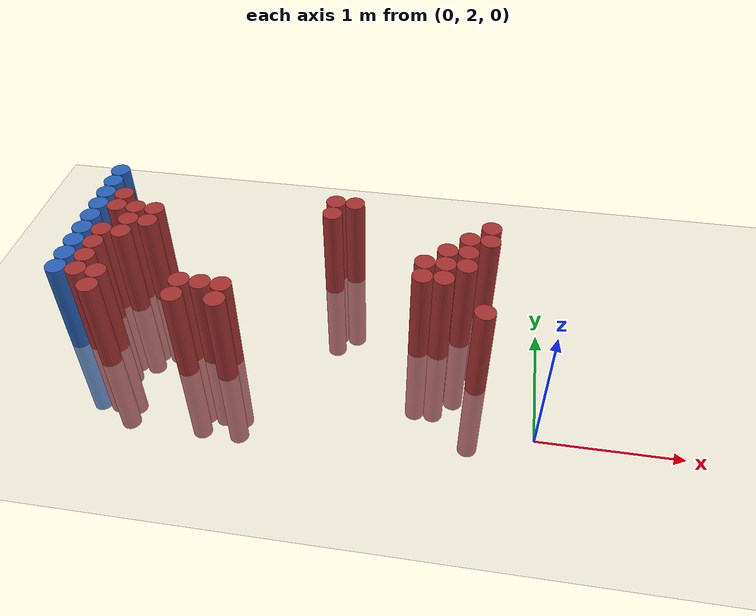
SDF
<sdf version="1.6">
 <world name="default">
  <model name="ground_plane">
   <static>1</static>
   <link name="link">
    <collision name="collision">
     <geometry><plane><normal>0 0 1</normal><size>100 100</size></plane></geometry>
     <surface><friction><ode><mu>100</mu><mu2>50</mu2></ode></friction></surface>
    </collision>
    <visual name="visual">
     <cast_shadows>0</cast_shadows>
     <geometry><plane><normal>0 0 1</normal><size>100 100</size></plane></geometry>
     <material>
      <script><uri>file://media/materials/scripts/gazebo.material</uri><name>Gazebo/Grey</name></script>
     </material>
    </visual>
   </link>
  </model>
  <model name="unit_cylinder_147">
   <static>1</static>
   <pose>-3.425000 2.425000 0.000000 0.000000 0.000000 0.000000</pose>
   <link name="link">
    <inertial>
     <mass>1</mass>
     <inertia><ixx>0.145833</ixx><ixy>0</ixy><ixz>0</ixz><iyy>0.145833</iyy><iyz>0</iyz><izz>0.125</izz></inertia>
    </inertial>
    <collision name="collision">
     <geometry><cylinder><radius>0.075000</radius><length>1.5</length></cylinder></geometry>
    </collision>
    <visual name="visual">
     <geometry><cylinder><radius>0.075000</radius><length>1.5</length></cylinder></geometry>
     <material>
      <ambient>0.152000 0.379000 0.720000 1</ambient>
      <diffuse>0.152000 0.379000 0.720000 1</diffuse>
     </material>
     <material>
      <script><name>Gazebo/Grey</name><uri>file://media/materials/scripts/gazebo.material</uri></script>
     </material>
    </visual>
   </link>
  </model>
  <model name="unit_cylinder_149">
   <static>1</static>
   <pose>-3.425000 2.575000 0.000000 0.000000 0.000000 0.000000</pose>
   <link name="link">
    <inertial>
     <mass>1</mass>
     <inertia><ixx>0.145833</ixx><ixy>0</ixy><ixz>0</ixz><iyy>0.145833</iyy><iyz>0</iyz><izz>0.125</izz></inertia>
    </inertial>
    <collision name="collision">
     <geometry><cylinder><radius>0.075000</radius><length>1.5</length></cylinder></geometry>
    </collision>
    <visual name="visual">
     <geometry><cylinder><radius>0.075000</radius><length>1.5</length></cylinder></geometry>
     <material>
      <ambient>0.152000 0.379000 0.720000 1</ambient>
      <diffuse>0.152000 0.379000 0.720000 1</diffuse>
     </material>
     <material>
      <script><name>Gazebo/Grey</name><uri>file://media/materials/scripts/gazebo.material</uri></script>
     </material>
    </visual>
   </link>
  </model>
  <model name="unit_cylinder_151">
   <static>1</static>
   <pose>-3.425000 2.725000 0.000000 0.000000 0.000000 0.000000</pose>
   <link name="link">
    <inertial>
     <mass>1</mass>
     <inertia><ixx>0.145833</ixx><ixy>0</ixy><ixz>0</ixz><iyy>0.145833</iyy><iyz>0</iyz><izz>0.125</izz></inertia>
    </inertial>
    <collision name="collision">
     <geometry><cylinder><radius>0.075000</radius><length>1.5</length></cylinder></geometry>
    </collision>
    <visual name="visual">
     <geometry><cylinder><radius>0.075000</radius><length>1.5</length></cylinder></geometry>
     <material>
      <ambient>0.152000 0.379000 0.720000 1</ambient>
      <diffuse>0.152000 0.379000 0.720000 1</diffuse>
     </material>
     <material>
      <script><name>Gazebo/Grey</name><uri>file://media/materials/scripts/gazebo.material</uri></script>
     </material>
    </visual>
   </link>
  </model>
  <model name="unit_cylinder_153">
   <static>1</static>
   <pose>-3.425000 2.875000 0.000000 0.000000 0.000000 0.000000</pose>
   <link name="link">
    <inertial>
     <mass>1</mass>
     <inertia><ixx>0.145833</ixx><ixy>0</ixy><ixz>0</ixz><iyy>0.145833</iyy><iyz>0</iyz><izz>0.125</izz></inertia>
    </inertial>
    <collision name="collision">
     <geometry><cylinder><radius>0.075000</radius><length>1.5</length></cylinder></geometry>
    </collision>
    <visual name="visual">
     <geometry><cylinder><radius>0.075000</radius><length>1.5</length></cylinder></geometry>
     <material>
      <ambient>0.152000 0.379000 0.720000 1</ambient>
      <diffuse>0.152000 0.379000 0.720000 1</diffuse>
     </material>
     <material>
      <script><name>Gazebo/Grey</name><uri>file://media/materials/scripts/gazebo.material</uri></script>
     </material>
    </visual>
   </link>
  </model>
  <model name="unit_cylinder_155">
   <static>1</static>
   <pose>-3.425000 3.025000 0.000000 0.000000 0.000000 0.000000</pose>
   <link name="link">
    <inertial>
     <mass>1</mass>
     <inertia><ixx>0.145833</ixx><ixy>0</ixy><ixz>0</ixz><iyy>0.145833</iyy><iyz>0</iyz><izz>0.125</izz></inertia>
    </inertial>
    <collision name="collision">
     <geometry><cylinder><radius>0.075000</radius><length>1.5</length></cylinder></geometry>
    </collision>
    <visual name="visual">
     <geometry><cylinder><radius>0.075000</radius><length>1.5</length></cylinder></geometry>
     <material>
      <ambient>0.152000 0.379000 0.720000 1</ambient>
      <diffuse>0.152000 0.379000 0.720000 1</diffuse>
     </material>
     <material>
      <script><name>Gazebo/Grey</name><uri>file://media/materials/scripts/gazebo.material</uri></script>
     </material>
    </visual>
   </link>
  </model>
  <model name="unit_cylinder_157">
   <static>1</static>
   <pose>-3.425000 3.175000 0.000000 0.000000 0.000000 0.000000</pose>
   <link name="link">
    <inertial>
     <mass>1</mass>
     <inertia><ixx>0.145833</ixx><ixy>0</ixy><ixz>0</ixz><iyy>0.145833</iyy><iyz>0</iyz><izz>0.125</izz></inertia>
    </inertial>
    <collision name="collision">
     <geometry><cylinder><radius>0.075000</radius><length>1.5</length></cylinder></geometry>
    </collision>
    <visual name="visual">
     <geometry><cylinder><radius>0.075000</radius><length>1.5</length></cylinder></geometry>
     <material>
      <ambient>0.152000 0.379000 0.720000 1</ambient>
      <diffuse>0.152000 0.379000 0.720000 1</diffuse>
     </material>
     <material>
      <script><name>Gazebo/Grey</name><uri>file://media/materials/scripts/gazebo.material</uri></script>
     </material>
    </visual>
   </link>
  </model>
  <model name="unit_cylinder_159">
   <static>1</static>
   <pose>-3.425000 3.325000 0.000000 0.000000 0.000000 0.000000</pose>
   <link name="link">
    <inertial>
     <mass>1</mass>
     <inertia><ixx>0.145833</ixx><ixy>0</ixy><ixz>0</ixz><iyy>0.145833</iyy><iyz>0</iyz><izz>0.125</izz></inertia>
    </inertial>
    <collision name="collision">
     <geometry><cylinder><radius>0.075000</radius><length>1.5</length></cylinder></geometry>
    </collision>
    <visual name="visual">
     <geometry><cylinder><radius>0.075000</radius><length>1.5</length></cylinder></geometry>
     <material>
      <ambient>0.152000 0.379000 0.720000 1</ambient>
      <diffuse>0.152000 0.379000 0.720000 1</diffuse>
     </material>
     <material>
      <script><name>Gazebo/Grey</name><uri>file://media/materials/scripts/gazebo.material</uri></script>
     </material>
    </visual>
   </link>
  </model>
  <model name="unit_cylinder_161">
   <static>1</static>
   <pose>-3.425000 3.475000 0.000000 0.000000 0.000000 0.000000</pose>
   <link name="link">
    <inertial>
     <mass>1</mass>
     <inertia><ixx>0.145833</ixx><ixy>0</ixy><ixz>0</ixz><iyy>0.145833</iyy><iyz>0</iyz><izz>0.125</izz></inertia>
    </inertial>
    <collision name="collision">
     <geometry><cylinder><radius>0.075000</radius><length>1.5</length></cylinder></geometry>
    </collision>
    <visual name="visual">
     <geometry><cylinder><radius>0.075000</radius><length>1.5</length></cylinder></geometry>
     <material>
      <ambient>0.152000 0.379000 0.720000 1</ambient>
      <diffuse>0.152000 0.379000 0.720000 1</diffuse>
     </material>
     <material>
      <script><name>Gazebo/Grey</name><uri>file://media/materials/scripts/gazebo.material</uri></script>
     </material>
    </visual>
   </link>
  </model>
  <model name="unit_cylinder_163">
   <static>1</static>
   <pose>-3.425000 3.625000 0.000000 0.000000 0.000000 0.000000</pose>
   <link name="link">
    <inertial>
     <mass>1</mass>
     <inertia><ixx>0.145833</ixx><ixy>0</ixy><ixz>0</ixz><iyy>0.145833</iyy><iyz>0</iyz><izz>0.125</izz></inertia>
    </inertial>
    <collision name="collision">
     <geometry><cylinder><radius>0.075000</radius><length>1.5</length></cylinder></geometry>
    </collision>
    <visual name="visual">
     <geometry><cylinder><radius>0.075000</radius><length>1.5</length></cylinder></geometry>
     <material>
      <ambient>0.152000 0.379000 0.720000 1</ambient>
      <diffuse>0.152000 0.379000 0.720000 1</diffuse>
     </material>
     <material>
      <script><name>Gazebo/Grey</name><uri>file://media/materials/scripts/gazebo.material</uri></script>
     </material>
    </visual>
   </link>
  </model>
  <model name="unit_cylinder_237">
   <static>1</static>
   <pose>-3.425000 2.425000 0.000000 0.000000 0.000000 0.000000</pose>
   <link name="link">
    <inertial>
     <mass>1</mass>
     <inertia><ixx>0.145833</ixx><ixy>0</ixy><ixz>0</ixz><iyy>0.145833</iyy><iyz>0</iyz><izz>0.125</izz></inertia>
    </inertial>
    <collision name="collision">
     <geometry><cylinder><radius>0.075000</radius><length>1.5</length></cylinder></geometry>
    </collision>
    <visual name="visual">
     <geometry><cylinder><radius>0.075000</radius><length>1.5</length></cylinder></geometry>
     <material>
      <ambient>0.152000 0.379000 0.720000 1</ambient>
      <diffuse>0.152000 0.379000 0.720000 1</diffuse>
     </material>
     <material>
      <script><name>Gazebo/Grey</name><uri>file://media/materials/scripts/gazebo.material</uri></script>
     </material>
    </visual>
   </link>
  </model>
  <model name="unit_cylinder_238">
   <static>1</static>
   <pose>-3.425000 2.575000 0.000000 0.000000 0.000000 0.000000</pose>
   <link name="link">
    <inertial>
     <mass>1</mass>
     <inertia><ixx>0.145833</ixx><ixy>0</ixy><ixz>0</ixz><iyy>0.145833</iyy><iyz>0</iyz><izz>0.125</izz></inertia>
    </inertial>
    <collision name="collision">
     <geometry><cylinder><radius>0.075000</radius><length>1.5</length></cylinder></geometry>
    </collision>
    <visual name="visual">
     <geometry><cylinder><radius>0.075000</radius><length>1.5</length></cylinder></geometry>
     <material>
      <ambient>0.152000 0.379000 0.720000 1</ambient>
      <diffuse>0.152000 0.379000 0.720000 1</diffuse>
     </material>
     <material>
      <script><name>Gazebo/Grey</name><uri>file://media/materials/scripts/gazebo.material</uri></script>
     </material>
    </visual>
   </link>
  </model>
  <model name="unit_cylinder_239">
   <static>1</static>
   <pose>-3.425000 2.725000 0.000000 0.000000 0.000000 0.000000</pose>
   <link name="link">
    <inertial>
     <mass>1</mass>
     <inertia><ixx>0.145833</ixx><ixy>0</ixy><ixz>0</ixz><iyy>0.145833</iyy><iyz>0</iyz><izz>0.125</izz></inertia>
    </inertial>
    <collision name="collision">
     <geometry><cylinder><radius>0.075000</radius><length>1.5</length></cylinder></geometry>
    </collision>
    <visual name="visual">
     <geometry><cylinder><radius>0.075000</radius><length>1.5</length></cylinder></geometry>
     <material>
      <ambient>0.152000 0.379000 0.720000 1</ambient>
      <diffuse>0.152000 0.379000 0.720000 1</diffuse>
     </material>
     <material>
      <script><name>Gazebo/Grey</name><uri>file://media/materials/scripts/gazebo.material</uri></script>
     </material>
    </visual>
   </link>
  </model>
  <model name="unit_cylinder_240">
   <static>1</static>
   <pose>-3.425000 2.875000 0.000000 0.000000 0.000000 0.000000</pose>
   <link name="link">
    <inertial>
     <mass>1</mass>
     <inertia><ixx>0.145833</ixx><ixy>0</ixy><ixz>0</ixz><iyy>0.145833</iyy><iyz>0</iyz><izz>0.125</izz></inertia>
    </inertial>
    <collision name="collision">
     <geometry><cylinder><radius>0.075000</radius><length>1.5</length></cylinder></geometry>
    </collision>
    <visual name="visual">
     <geometry><cylinder><radius>0.075000</radius><length>1.5</length></cylinder></geometry>
     <material>
      <ambient>0.152000 0.379000 0.720000 1</ambient>
      <diffuse>0.152000 0.379000 0.720000 1</diffuse>
     </material>
     <material>
      <script><name>Gazebo/Grey</name><uri>file://media/materials/scripts/gazebo.material</uri></script>
     </material>
    </visual>
   </link>
  </model>
  <model name="unit_cylinder_241">
   <static>1</static>
   <pose>-3.425000 3.025000 0.000000 0.000000 0.000000 0.000000</pose>
   <link name="link">
    <inertial>
     <mass>1</mass>
     <inertia><ixx>0.145833</ixx><ixy>0</ixy><ixz>0</ixz><iyy>0.145833</iyy><iyz>0</iyz><izz>0.125</izz></inertia>
    </inertial>
    <collision name="collision">
     <geometry><cylinder><radius>0.075000</radius><length>1.5</length></cylinder></geometry>
    </collision>
    <visual name="visual">
     <geometry><cylinder><radius>0.075000</radius><length>1.5</length></cylinder></geometry>
     <material>
      <ambient>0.152000 0.379000 0.720000 1</ambient>
      <diffuse>0.152000 0.379000 0.720000 1</diffuse>
     </material>
     <material>
      <script><name>Gazebo/Grey</name><uri>file://media/materials/scripts/gazebo.material</uri></script>
     </material>
    </visual>
   </link>
  </model>
  <model name="unit_cylinder_242">
   <static>1</static>
   <pose>-3.425000 3.175000 0.000000 0.000000 0.000000 0.000000</pose>
   <link name="link">
    <inertial>
     <mass>1</mass>
     <inertia><ixx>0.145833</ixx><ixy>0</ixy><ixz>0</ixz><iyy>0.145833</iyy><iyz>0</iyz><izz>0.125</izz></inertia>
    </inertial>
    <collision name="collision">
     <geometry><cylinder><radius>0.075000</radius><length>1.5</length></cylinder></geometry>
    </collision>
    <visual name="visual">
     <geometry><cylinder><radius>0.075000</radius><length>1.5</length></cylinder></geometry>
     <material>
      <ambient>0.152000 0.379000 0.720000 1</ambient>
      <diffuse>0.152000 0.379000 0.720000 1</diffuse>
     </material>
     <material>
      <script><name>Gazebo/Grey</name><uri>file://media/materials/scripts/gazebo.material</uri></script>
     </material>
    </visual>
   </link>
  </model>
  <model name="unit_cylinder_243">
   <static>1</static>
   <pose>-3.425000 3.325000 0.000000 0.000000 0.000000 0.000000</pose>
   <link name="link">
    <inertial>
     <mass>1</mass>
     <inertia><ixx>0.145833</ixx><ixy>0</ixy><ixz>0</ixz><iyy>0.145833</iyy><iyz>0</iyz><izz>0.125</izz></inertia>
    </inertial>
    <collision name="collision">
     <geometry><cylinder><radius>0.075000</radius><length>1.5</length></cylinder></geometry>
    </collision>
    <visual name="visual">
     <geometry><cylinder><radius>0.075000</radius><length>1.5</length></cylinder></geometry>
     <material>
      <ambient>0.152000 0.379000 0.720000 1</ambient>
      <diffuse>0.152000 0.379000 0.720000 1</diffuse>
     </material>
     <material>
      <script><name>Gazebo/Grey</name><uri>file://media/materials/scripts/gazebo.material</uri></script>
     </material>
    </visual>
   </link>
  </model>
  <model name="unit_cylinder_244">
   <static>1</static>
   <pose>-3.425000 3.475000 0.000000 0.000000 0.000000 0.000000</pose>
   <link name="link">
    <inertial>
     <mass>1</mass>
     <inertia><ixx>0.145833</ixx><ixy>0</ixy><ixz>0</ixz><iyy>0.145833</iyy><iyz>0</iyz><izz>0.125</izz></inertia>
    </inertial>
    <collision name="collision">
     <geometry><cylinder><radius>0.075000</radius><length>1.5</length></cylinder></geometry>
    </collision>
    <visual name="visual">
     <geometry><cylinder><radius>0.075000</radius><length>1.5</length></cylinder></geometry>
     <material>
      <ambient>0.152000 0.379000 0.720000 1</ambient>
      <diffuse>0.152000 0.379000 0.720000 1</diffuse>
     </material>
     <material>
      <script><name>Gazebo/Grey</name><uri>file://media/materials/scripts/gazebo.material</uri></script>
     </material>
    </visual>
   </link>
  </model>
  <model name="unit_cylinder_245">
   <static>1</static>
   <pose>-3.425000 3.625000 0.000000 0.000000 0.000000 0.000000</pose>
   <link name="link">
    <inertial>
     <mass>1</mass>
     <inertia><ixx>0.145833</ixx><ixy>0</ixy><ixz>0</ixz><iyy>0.145833</iyy><iyz>0</iyz><izz>0.125</izz></inertia>
    </inertial>
    <collision name="collision">
     <geometry><cylinder><radius>0.075000</radius><length>1.5</length></cylinder></geometry>
    </collision>
    <visual name="visual">
     <geometry><cylinder><radius>0.075000</radius><length>1.5</length></cylinder></geometry>
     <material>
      <ambient>0.152000 0.379000 0.720000 1</ambient>
      <diffuse>0.152000 0.379000 0.720000 1</diffuse>
     </material>
     <material>
      <script><name>Gazebo/Grey</name><uri>file://media/materials/scripts/gazebo.material</uri></script>
     </material>
    </visual>
   </link>
  </model>
  <model name="unit_cylinder_269">
   <static>1</static>
   <pose>-3.275000 2.425000 0.000000 0.000000 0.000000 0.000000</pose>
   <link name="link">
    <inertial>
     <mass>1</mass>
     <inertia><ixx>0.145833</ixx><ixy>0</ixy><ixz>0</ixz><iyy>0.145833</iyy><iyz>0</iyz><izz>0.125</izz></inertia>
    </inertial>
    <collision name="collision">
     <geometry><cylinder><radius>0.075000</radius><length>1.5</length></cylinder></geometry>
    </collision>
    <visual name="visual">
     <geometry><cylinder><radius>0.075000</radius><length>1.5</length></cylinder></geometry>
     <material>
      <ambient>0.648000 0.192000 0.192000 1</ambient>
      <diffuse>0.648000 0.192000 0.192000 1</diffuse>
     </material>
     <material>
      <script><name>Gazebo/Grey</name><uri>file://media/materials/scripts/gazebo.material</uri></script>
     </material>
    </visual>
   </link>
  </model>
  <model name="unit_cylinder_270">
   <static>1</static>
   <pose>-3.275000 2.575000 0.000000 0.000000 0.000000 0.000000</pose>
   <link name="link">
    <inertial>
     <mass>1</mass>
     <inertia><ixx>0.145833</ixx><ixy>0</ixy><ixz>0</ixz><iyy>0.145833</iyy><iyz>0</iyz><izz>0.125</izz></inertia>
    </inertial>
    <collision name="collision">
     <geometry><cylinder><radius>0.075000</radius><length>1.5</length></cylinder></geometry>
    </collision>
    <visual name="visual">
     <geometry><cylinder><radius>0.075000</radius><length>1.5</length></cylinder></geometry>
     <material>
      <ambient>0.648000 0.192000 0.192000 1</ambient>
      <diffuse>0.648000 0.192000 0.192000 1</diffuse>
     </material>
     <material>
      <script><name>Gazebo/Grey</name><uri>file://media/materials/scripts/gazebo.material</uri></script>
     </material>
    </visual>
   </link>
  </model>
  <model name="unit_cylinder_271">
   <static>1</static>
   <pose>-3.275000 2.725000 0.000000 0.000000 0.000000 0.000000</pose>
   <link name="link">
    <inertial>
     <mass>1</mass>
     <inertia><ixx>0.145833</ixx><ixy>0</ixy><ixz>0</ixz><iyy>0.145833</iyy><iyz>0</iyz><izz>0.125</izz></inertia>
    </inertial>
    <collision name="collision">
     <geometry><cylinder><radius>0.075000</radius><length>1.5</length></cylinder></geometry>
    </collision>
    <visual name="visual">
     <geometry><cylinder><radius>0.075000</radius><length>1.5</length></cylinder></geometry>
     <material>
      <ambient>0.648000 0.192000 0.192000 1</ambient>
      <diffuse>0.648000 0.192000 0.192000 1</diffuse>
     </material>
     <material>
      <script><name>Gazebo/Grey</name><uri>file://media/materials/scripts/gazebo.material</uri></script>
     </material>
    </visual>
   </link>
  </model>
  <model name="unit_cylinder_272">
   <static>1</static>
   <pose>-3.275000 2.875000 0.000000 0.000000 0.000000 0.000000</pose>
   <link name="link">
    <inertial>
     <mass>1</mass>
     <inertia><ixx>0.145833</ixx><ixy>0</ixy><ixz>0</ixz><iyy>0.145833</iyy><iyz>0</iyz><izz>0.125</izz></inertia>
    </inertial>
    <collision name="collision">
     <geometry><cylinder><radius>0.075000</radius><length>1.5</length></cylinder></geometry>
    </collision>
    <visual name="visual">
     <geometry><cylinder><radius>0.075000</radius><length>1.5</length></cylinder></geometry>
     <material>
      <ambient>0.648000 0.192000 0.192000 1</ambient>
      <diffuse>0.648000 0.192000 0.192000 1</diffuse>
     </material>
     <material>
      <script><name>Gazebo/Grey</name><uri>file://media/materials/scripts/gazebo.material</uri></script>
     </material>
    </visual>
   </link>
  </model>
  <model name="unit_cylinder_273">
   <static>1</static>
   <pose>-3.275000 3.175000 0.000000 0.000000 0.000000 0.000000</pose>
   <link name="link">
    <inertial>
     <mass>1</mass>
     <inertia><ixx>0.145833</ixx><ixy>0</ixy><ixz>0</ixz><iyy>0.145833</iyy><iyz>0</iyz><izz>0.125</izz></inertia>
    </inertial>
    <collision name="collision">
     <geometry><cylinder><radius>0.075000</radius><length>1.5</length></cylinder></geometry>
    </collision>
    <visual name="visual">
     <geometry><cylinder><radius>0.075000</radius><length>1.5</length></cylinder></geometry>
     <material>
      <ambient>0.648000 0.192000 0.192000 1</ambient>
      <diffuse>0.648000 0.192000 0.192000 1</diffuse>
     </material>
     <material>
      <script><name>Gazebo/Grey</name><uri>file://media/materials/scripts/gazebo.material</uri></script>
     </material>
    </visual>
   </link>
  </model>
  <model name="unit_cylinder_274">
   <static>1</static>
   <pose>-3.275000 3.325000 0.000000 0.000000 0.000000 0.000000</pose>
   <link name="link">
    <inertial>
     <mass>1</mass>
     <inertia><ixx>0.145833</ixx><ixy>0</ixy><ixz>0</ixz><iyy>0.145833</iyy><iyz>0</iyz><izz>0.125</izz></inertia>
    </inertial>
    <collision name="collision">
     <geometry><cylinder><radius>0.075000</radius><length>1.5</length></cylinder></geometry>
    </collision>
    <visual name="visual">
     <geometry><cylinder><radius>0.075000</radius><length>1.5</length></cylinder></geometry>
     <material>
      <ambient>0.648000 0.192000 0.192000 1</ambient>
      <diffuse>0.648000 0.192000 0.192000 1</diffuse>
     </material>
     <material>
      <script><name>Gazebo/Grey</name><uri>file://media/materials/scripts/gazebo.material</uri></script>
     </material>
    </visual>
   </link>
  </model>
  <model name="unit_cylinder_280">
   <static>1</static>
   <pose>-3.125000 2.275000 0.000000 0.000000 0.000000 0.000000</pose>
   <link name="link">
    <inertial>
     <mass>1</mass>
     <inertia><ixx>0.145833</ixx><ixy>0</ixy><ixz>0</ixz><iyy>0.145833</iyy><iyz>0</iyz><izz>0.125</izz></inertia>
    </inertial>
    <collision name="collision">
     <geometry><cylinder><radius>0.075000</radius><length>1.5</length></cylinder></geometry>
    </collision>
    <visual name="visual">
     <geometry><cylinder><radius>0.075000</radius><length>1.5</length></cylinder></geometry>
     <material>
      <ambient>0.648000 0.192000 0.192000 1</ambient>
      <diffuse>0.648000 0.192000 0.192000 1</diffuse>
     </material>
     <material>
      <script><name>Gazebo/Grey</name><uri>file://media/materials/scripts/gazebo.material</uri></script>
     </material>
    </visual>
   </link>
  </model>
  <model name="unit_cylinder_281">
   <static>1</static>
   <pose>-3.125000 2.425000 0.000000 0.000000 0.000000 0.000000</pose>
   <link name="link">
    <inertial>
     <mass>1</mass>
     <inertia><ixx>0.145833</ixx><ixy>0</ixy><ixz>0</ixz><iyy>0.145833</iyy><iyz>0</iyz><izz>0.125</izz></inertia>
    </inertial>
    <collision name="collision">
     <geometry><cylinder><radius>0.075000</radius><length>1.5</length></cylinder></geometry>
    </collision>
    <visual name="visual">
     <geometry><cylinder><radius>0.075000</radius><length>1.5</length></cylinder></geometry>
     <material>
      <ambient>0.648000 0.192000 0.192000 1</ambient>
      <diffuse>0.648000 0.192000 0.192000 1</diffuse>
     </material>
     <material>
      <script><name>Gazebo/Grey</name><uri>file://media/materials/scripts/gazebo.material</uri></script>
     </material>
    </visual>
   </link>
  </model>
  <model name="unit_cylinder_282">
   <static>1</static>
   <pose>-3.125000 2.875000 0.000000 0.000000 0.000000 0.000000</pose>
   <link name="link">
    <inertial>
     <mass>1</mass>
     <inertia><ixx>0.145833</ixx><ixy>0</ixy><ixz>0</ixz><iyy>0.145833</iyy><iyz>0</iyz><izz>0.125</izz></inertia>
    </inertial>
    <collision name="collision">
     <geometry><cylinder><radius>0.075000</radius><length>1.5</length></cylinder></geometry>
    </collision>
    <visual name="visual">
     <geometry><cylinder><radius>0.075000</radius><length>1.5</length></cylinder></geometry>
     <material>
      <ambient>0.648000 0.192000 0.192000 1</ambient>
      <diffuse>0.648000 0.192000 0.192000 1</diffuse>
     </material>
     <material>
      <script><name>Gazebo/Grey</name><uri>file://media/materials/scripts/gazebo.material</uri></script>
     </material>
    </visual>
   </link>
  </model>
  <model name="unit_cylinder_283">
   <static>1</static>
   <pose>-3.125000 3.025000 0.000000 0.000000 0.000000 0.000000</pose>
   <link name="link">
    <inertial>
     <mass>1</mass>
     <inertia><ixx>0.145833</ixx><ixy>0</ixy><ixz>0</ixz><iyy>0.145833</iyy><iyz>0</iyz><izz>0.125</izz></inertia>
    </inertial>
    <collision name="collision">
     <geometry><cylinder><radius>0.075000</radius><length>1.5</length></cylinder></geometry>
    </collision>
    <visual name="visual">
     <geometry><cylinder><radius>0.075000</radius><length>1.5</length></cylinder></geometry>
     <material>
      <ambient>0.648000 0.192000 0.192000 1</ambient>
      <diffuse>0.648000 0.192000 0.192000 1</diffuse>
     </material>
     <material>
      <script><name>Gazebo/Grey</name><uri>file://media/materials/scripts/gazebo.material</uri></script>
     </material>
    </visual>
   </link>
  </model>
  <model name="unit_cylinder_284">
   <static>1</static>
   <pose>-3.125000 3.175000 0.000000 0.000000 0.000000 0.000000</pose>
   <link name="link">
    <inertial>
     <mass>1</mass>
     <inertia><ixx>0.145833</ixx><ixy>0</ixy><ixz>0</ixz><iyy>0.145833</iyy><iyz>0</iyz><izz>0.125</izz></inertia>
    </inertial>
    <collision name="collision">
     <geometry><cylinder><radius>0.075000</radius><length>1.5</length></cylinder></geometry>
    </collision>
    <visual name="visual">
     <geometry><cylinder><radius>0.075000</radius><length>1.5</length></cylinder></geometry>
     <material>
      <ambient>0.648000 0.192000 0.192000 1</ambient>
      <diffuse>0.648000 0.192000 0.192000 1</diffuse>
     </material>
     <material>
      <script><name>Gazebo/Grey</name><uri>file://media/materials/scripts/gazebo.material</uri></script>
     </material>
    </visual>
   </link>
  </model>
  <model name="unit_cylinder_291">
   <static>1</static>
   <pose>-2.975000 3.025000 0.000000 0.000000 0.000000 0.000000</pose>
   <link name="link">
    <inertial>
     <mass>1</mass>
     <inertia><ixx>0.145833</ixx><ixy>0</ixy><ixz>0</ixz><iyy>0.145833</iyy><iyz>0</iyz><izz>0.125</izz></inertia>
    </inertial>
    <collision name="collision">
     <geometry><cylinder><radius>0.075000</radius><length>1.5</length></cylinder></geometry>
    </collision>
    <visual name="visual">
     <geometry><cylinder><radius>0.075000</radius><length>1.5</length></cylinder></geometry>
     <material>
      <ambient>0.648000 0.192000 0.192000 1</ambient>
      <diffuse>0.648000 0.192000 0.192000 1</diffuse>
     </material>
     <material>
      <script><name>Gazebo/Grey</name><uri>file://media/materials/scripts/gazebo.material</uri></script>
     </material>
    </visual>
   </link>
  </model>
  <model name="unit_cylinder_292">
   <static>1</static>
   <pose>-2.975000 3.175000 0.000000 0.000000 0.000000 0.000000</pose>
   <link name="link">
    <inertial>
     <mass>1</mass>
     <inertia><ixx>0.145833</ixx><ixy>0</ixy><ixz>0</ixz><iyy>0.145833</iyy><iyz>0</iyz><izz>0.125</izz></inertia>
    </inertial>
    <collision name="collision">
     <geometry><cylinder><radius>0.075000</radius><length>1.5</length></cylinder></geometry>
    </collision>
    <visual name="visual">
     <geometry><cylinder><radius>0.075000</radius><length>1.5</length></cylinder></geometry>
     <material>
      <ambient>0.648000 0.192000 0.192000 1</ambient>
      <diffuse>0.648000 0.192000 0.192000 1</diffuse>
     </material>
     <material>
      <script><name>Gazebo/Grey</name><uri>file://media/materials/scripts/gazebo.material</uri></script>
     </material>
    </visual>
   </link>
  </model>
  <model name="unit_cylinder_316">
   <static>1</static>
   <pose>-2.525000 2.275000 0.000000 0.000000 0.000000 0.000000</pose>
   <link name="link">
    <inertial>
     <mass>1</mass>
     <inertia><ixx>0.145833</ixx><ixy>0</ixy><ixz>0</ixz><iyy>0.145833</iyy><iyz>0</iyz><izz>0.125</izz></inertia>
    </inertial>
    <collision name="collision">
     <geometry><cylinder><radius>0.075000</radius><length>1.5</length></cylinder></geometry>
    </collision>
    <visual name="visual">
     <geometry><cylinder><radius>0.075000</radius><length>1.5</length></cylinder></geometry>
     <material>
      <ambient>0.648000 0.192000 0.192000 1</ambient>
      <diffuse>0.648000 0.192000 0.192000 1</diffuse>
     </material>
     <material>
      <script><name>Gazebo/Grey</name><uri>file://media/materials/scripts/gazebo.material</uri></script>
     </material>
    </visual>
   </link>
  </model>
  <model name="unit_cylinder_317">
   <static>1</static>
   <pose>-2.525000 2.425000 0.000000 0.000000 0.000000 0.000000</pose>
   <link name="link">
    <inertial>
     <mass>1</mass>
     <inertia><ixx>0.145833</ixx><ixy>0</ixy><ixz>0</ixz><iyy>0.145833</iyy><iyz>0</iyz><izz>0.125</izz></inertia>
    </inertial>
    <collision name="collision">
     <geometry><cylinder><radius>0.075000</radius><length>1.5</length></cylinder></geometry>
    </collision>
    <visual name="visual">
     <geometry><cylinder><radius>0.075000</radius><length>1.5</length></cylinder></geometry>
     <material>
      <ambient>0.648000 0.192000 0.192000 1</ambient>
      <diffuse>0.648000 0.192000 0.192000 1</diffuse>
     </material>
     <material>
      <script><name>Gazebo/Grey</name><uri>file://media/materials/scripts/gazebo.material</uri></script>
     </material>
    </visual>
   </link>
  </model>
  <model name="unit_cylinder_327">
   <static>1</static>
   <pose>-2.375000 2.425000 0.000000 0.000000 0.000000 0.000000</pose>
   <link name="link">
    <inertial>
     <mass>1</mass>
     <inertia><ixx>0.145833</ixx><ixy>0</ixy><ixz>0</ixz><iyy>0.145833</iyy><iyz>0</iyz><izz>0.125</izz></inertia>
    </inertial>
    <collision name="collision">
     <geometry><cylinder><radius>0.075000</radius><length>1.5</length></cylinder></geometry>
    </collision>
    <visual name="visual">
     <geometry><cylinder><radius>0.075000</radius><length>1.5</length></cylinder></geometry>
     <material>
      <ambient>0.648000 0.192000 0.192000 1</ambient>
      <diffuse>0.648000 0.192000 0.192000 1</diffuse>
     </material>
     <material>
      <script><name>Gazebo/Grey</name><uri>file://media/materials/scripts/gazebo.material</uri></script>
     </material>
    </visual>
   </link>
  </model>
  <model name="unit_cylinder_338">
   <static>1</static>
   <pose>-2.225000 2.275000 0.000000 0.000000 0.000000 0.000000</pose>
   <link name="link">
    <inertial>
     <mass>1</mass>
     <inertia><ixx>0.145833</ixx><ixy>0</ixy><ixz>0</ixz><iyy>0.145833</iyy><iyz>0</iyz><izz>0.125</izz></inertia>
    </inertial>
    <collision name="collision">
     <geometry><cylinder><radius>0.075000</radius><length>1.5</length></cylinder></geometry>
    </collision>
    <visual name="visual">
     <geometry><cylinder><radius>0.075000</radius><length>1.5</length></cylinder></geometry>
     <material>
      <ambient>0.648000 0.192000 0.192000 1</ambient>
      <diffuse>0.648000 0.192000 0.192000 1</diffuse>
     </material>
     <material>
      <script><name>Gazebo/Grey</name><uri>file://media/materials/scripts/gazebo.material</uri></script>
     </material>
    </visual>
   </link>
  </model>
  <model name="unit_cylinder_339">
   <static>1</static>
   <pose>-2.225000 2.425000 0.000000 0.000000 0.000000 0.000000</pose>
   <link name="link">
    <inertial>
     <mass>1</mass>
     <inertia><ixx>0.145833</ixx><ixy>0</ixy><ixz>0</ixz><iyy>0.145833</iyy><iyz>0</iyz><izz>0.125</izz></inertia>
    </inertial>
    <collision name="collision">
     <geometry><cylinder><radius>0.075000</radius><length>1.5</length></cylinder></geometry>
    </collision>
    <visual name="visual">
     <geometry><cylinder><radius>0.075000</radius><length>1.5</length></cylinder></geometry>
     <material>
      <ambient>0.648000 0.192000 0.192000 1</ambient>
      <diffuse>0.648000 0.192000 0.192000 1</diffuse>
     </material>
     <material>
      <script><name>Gazebo/Grey</name><uri>file://media/materials/scripts/gazebo.material</uri></script>
     </material>
    </visual>
   </link>
  </model>
  <model name="unit_cylinder_355">
   <static>1</static>
   <pose>-1.625000 3.325000 0.000000 0.000000 0.000000 0.000000</pose>
   <link name="link">
    <inertial>
     <mass>1</mass>
     <inertia><ixx>0.145833</ixx><ixy>0</ixy><ixz>0</ixz><iyy>0.145833</iyy><iyz>0</iyz><izz>0.125</izz></inertia>
    </inertial>
    <collision name="collision">
     <geometry><cylinder><radius>0.075000</radius><length>1.5</length></cylinder></geometry>
    </collision>
    <visual name="visual">
     <geometry><cylinder><radius>0.075000</radius><length>1.5</length></cylinder></geometry>
     <material>
      <ambient>0.648000 0.192000 0.192000 1</ambient>
      <diffuse>0.648000 0.192000 0.192000 1</diffuse>
     </material>
     <material>
      <script><name>Gazebo/Grey</name><uri>file://media/materials/scripts/gazebo.material</uri></script>
     </material>
    </visual>
   </link>
  </model>
  <model name="unit_cylinder_356">
   <static>1</static>
   <pose>-1.625000 3.475000 0.000000 0.000000 0.000000 0.000000</pose>
   <link name="link">
    <inertial>
     <mass>1</mass>
     <inertia><ixx>0.145833</ixx><ixy>0</ixy><ixz>0</ixz><iyy>0.145833</iyy><iyz>0</iyz><izz>0.125</izz></inertia>
    </inertial>
    <collision name="collision">
     <geometry><cylinder><radius>0.075000</radius><length>1.5</length></cylinder></geometry>
    </collision>
    <visual name="visual">
     <geometry><cylinder><radius>0.075000</radius><length>1.5</length></cylinder></geometry>
     <material>
      <ambient>0.648000 0.192000 0.192000 1</ambient>
      <diffuse>0.648000 0.192000 0.192000 1</diffuse>
     </material>
     <material>
      <script><name>Gazebo/Grey</name><uri>file://media/materials/scripts/gazebo.material</uri></script>
     </material>
    </visual>
   </link>
  </model>
  <model name="unit_cylinder_357">
   <static>1</static>
   <pose>-1.475000 3.475000 0.000000 0.000000 0.000000 0.000000</pose>
   <link name="link">
    <inertial>
     <mass>1</mass>
     <inertia><ixx>0.145833</ixx><ixy>0</ixy><ixz>0</ixz><iyy>0.145833</iyy><iyz>0</iyz><izz>0.125</izz></inertia>
    </inertial>
    <collision name="collision">
     <geometry><cylinder><radius>0.075000</radius><length>1.5</length></cylinder></geometry>
    </collision>
    <visual name="visual">
     <geometry><cylinder><radius>0.075000</radius><length>1.5</length></cylinder></geometry>
     <material>
      <ambient>0.648000 0.192000 0.192000 1</ambient>
      <diffuse>0.648000 0.192000 0.192000 1</diffuse>
     </material>
     <material>
      <script><name>Gazebo/Grey</name><uri>file://media/materials/scripts/gazebo.material</uri></script>
     </material>
    </visual>
   </link>
  </model>
  <model name="unit_cylinder_366">
   <static>1</static>
   <pose>-0.875000 2.725000 0.000000 0.000000 0.000000 0.000000</pose>
   <link name="link">
    <inertial>
     <mass>1</mass>
     <inertia><ixx>0.145833</ixx><ixy>0</ixy><ixz>0</ixz><iyy>0.145833</iyy><iyz>0</iyz><izz>0.125</izz></inertia>
    </inertial>
    <collision name="collision">
     <geometry><cylinder><radius>0.075000</radius><length>1.5</length></cylinder></geometry>
    </collision>
    <visual name="visual">
     <geometry><cylinder><radius>0.075000</radius><length>1.5</length></cylinder></geometry>
     <material>
      <ambient>0.648000 0.192000 0.192000 1</ambient>
      <diffuse>0.648000 0.192000 0.192000 1</diffuse>
     </material>
     <material>
      <script><name>Gazebo/Grey</name><uri>file://media/materials/scripts/gazebo.material</uri></script>
     </material>
    </visual>
   </link>
  </model>
  <model name="unit_cylinder_367">
   <static>1</static>
   <pose>-0.875000 2.875000 0.000000 0.000000 0.000000 0.000000</pose>
   <link name="link">
    <inertial>
     <mass>1</mass>
     <inertia><ixx>0.145833</ixx><ixy>0</ixy><ixz>0</ixz><iyy>0.145833</iyy><iyz>0</iyz><izz>0.125</izz></inertia>
    </inertial>
    <collision name="collision">
     <geometry><cylinder><radius>0.075000</radius><length>1.5</length></cylinder></geometry>
    </collision>
    <visual name="visual">
     <geometry><cylinder><radius>0.075000</radius><length>1.5</length></cylinder></geometry>
     <material>
      <ambient>0.648000 0.192000 0.192000 1</ambient>
      <diffuse>0.648000 0.192000 0.192000 1</diffuse>
     </material>
     <material>
      <script><name>Gazebo/Grey</name><uri>file://media/materials/scripts/gazebo.material</uri></script>
     </material>
    </visual>
   </link>
  </model>
  <model name="unit_cylinder_368">
   <static>1</static>
   <pose>-0.725000 2.725000 0.000000 0.000000 0.000000 0.000000</pose>
   <link name="link">
    <inertial>
     <mass>1</mass>
     <inertia><ixx>0.145833</ixx><ixy>0</ixy><ixz>0</ixz><iyy>0.145833</iyy><iyz>0</iyz><izz>0.125</izz></inertia>
    </inertial>
    <collision name="collision">
     <geometry><cylinder><radius>0.075000</radius><length>1.5</length></cylinder></geometry>
    </collision>
    <visual name="visual">
     <geometry><cylinder><radius>0.075000</radius><length>1.5</length></cylinder></geometry>
     <material>
      <ambient>0.648000 0.192000 0.192000 1</ambient>
      <diffuse>0.648000 0.192000 0.192000 1</diffuse>
     </material>
     <material>
      <script><name>Gazebo/Grey</name><uri>file://media/materials/scripts/gazebo.material</uri></script>
     </material>
    </visual>
   </link>
  </model>
  <model name="unit_cylinder_369">
   <static>1</static>
   <pose>-0.725000 2.875000 0.000000 0.000000 0.000000 0.000000</pose>
   <link name="link">
    <inertial>
     <mass>1</mass>
     <inertia><ixx>0.145833</ixx><ixy>0</ixy><ixz>0</ixz><iyy>0.145833</iyy><iyz>0</iyz><izz>0.125</izz></inertia>
    </inertial>
    <collision name="collision">
     <geometry><cylinder><radius>0.075000</radius><length>1.5</length></cylinder></geometry>
    </collision>
    <visual name="visual">
     <geometry><cylinder><radius>0.075000</radius><length>1.5</length></cylinder></geometry>
     <material>
      <ambient>0.648000 0.192000 0.192000 1</ambient>
      <diffuse>0.648000 0.192000 0.192000 1</diffuse>
     </material>
     <material>
      <script><name>Gazebo/Grey</name><uri>file://media/materials/scripts/gazebo.material</uri></script>
     </material>
    </visual>
   </link>
  </model>
  <model name="unit_cylinder_370">
   <static>1</static>
   <pose>-0.725000 3.025000 0.000000 0.000000 0.000000 0.000000</pose>
   <link name="link">
    <inertial>
     <mass>1</mass>
     <inertia><ixx>0.145833</ixx><ixy>0</ixy><ixz>0</ixz><iyy>0.145833</iyy><iyz>0</iyz><izz>0.125</izz></inertia>
    </inertial>
    <collision name="collision">
     <geometry><cylinder><radius>0.075000</radius><length>1.5</length></cylinder></geometry>
    </collision>
    <visual name="visual">
     <geometry><cylinder><radius>0.075000</radius><length>1.5</length></cylinder></geometry>
     <material>
      <ambient>0.648000 0.192000 0.192000 1</ambient>
      <diffuse>0.648000 0.192000 0.192000 1</diffuse>
     </material>
     <material>
      <script><name>Gazebo/Grey</name><uri>file://media/materials/scripts/gazebo.material</uri></script>
     </material>
    </visual>
   </link>
  </model>
  <model name="unit_cylinder_374">
   <static>1</static>
   <pose>-0.575000 2.875000 0.000000 0.000000 0.000000 0.000000</pose>
   <link name="link">
    <inertial>
     <mass>1</mass>
     <inertia><ixx>0.145833</ixx><ixy>0</ixy><ixz>0</ixz><iyy>0.145833</iyy><iyz>0</iyz><izz>0.125</izz></inertia>
    </inertial>
    <collision name="collision">
     <geometry><cylinder><radius>0.075000</radius><length>1.5</length></cylinder></geometry>
    </collision>
    <visual name="visual">
     <geometry><cylinder><radius>0.075000</radius><length>1.5</length></cylinder></geometry>
     <material>
      <ambient>0.648000 0.192000 0.192000 1</ambient>
      <diffuse>0.648000 0.192000 0.192000 1</diffuse>
     </material>
     <material>
      <script><name>Gazebo/Grey</name><uri>file://media/materials/scripts/gazebo.material</uri></script>
     </material>
    </visual>
   </link>
  </model>
  <model name="unit_cylinder_375">
   <static>1</static>
   <pose>-0.575000 3.025000 0.000000 0.000000 0.000000 0.000000</pose>
   <link name="link">
    <inertial>
     <mass>1</mass>
     <inertia><ixx>0.145833</ixx><ixy>0</ixy><ixz>0</ixz><iyy>0.145833</iyy><iyz>0</iyz><izz>0.125</izz></inertia>
    </inertial>
    <collision name="collision">
     <geometry><cylinder><radius>0.075000</radius><length>1.5</length></cylinder></geometry>
    </collision>
    <visual name="visual">
     <geometry><cylinder><radius>0.075000</radius><length>1.5</length></cylinder></geometry>
     <material>
      <ambient>0.648000 0.192000 0.192000 1</ambient>
      <diffuse>0.648000 0.192000 0.192000 1</diffuse>
     </material>
     <material>
      <script><name>Gazebo/Grey</name><uri>file://media/materials/scripts/gazebo.material</uri></script>
     </material>
    </visual>
   </link>
  </model>
  <model name="unit_cylinder_376">
   <static>1</static>
   <pose>-0.575000 3.175000 0.000000 0.000000 0.000000 0.000000</pose>
   <link name="link">
    <inertial>
     <mass>1</mass>
     <inertia><ixx>0.145833</ixx><ixy>0</ixy><ixz>0</ixz><iyy>0.145833</iyy><iyz>0</iyz><izz>0.125</izz></inertia>
    </inertial>
    <collision name="collision">
     <geometry><cylinder><radius>0.075000</radius><length>1.5</length></cylinder></geometry>
    </collision>
    <visual name="visual">
     <geometry><cylinder><radius>0.075000</radius><length>1.5</length></cylinder></geometry>
     <material>
      <ambient>0.648000 0.192000 0.192000 1</ambient>
      <diffuse>0.648000 0.192000 0.192000 1</diffuse>
     </material>
     <material>
      <script><name>Gazebo/Grey</name><uri>file://media/materials/scripts/gazebo.material</uri></script>
     </material>
    </visual>
   </link>
  </model>
  <model name="unit_cylinder_386">
   <static>1</static>
   <pose>-0.425000 2.425000 0.000000 0.000000 0.000000 0.000000</pose>
   <link name="link">
    <inertial>
     <mass>1</mass>
     <inertia><ixx>0.145833</ixx><ixy>0</ixy><ixz>0</ixz><iyy>0.145833</iyy><iyz>0</iyz><izz>0.125</izz></inertia>
    </inertial>
    <collision name="collision">
     <geometry><cylinder><radius>0.075000</radius><length>1.5</length></cylinder></geometry>
    </collision>
    <visual name="visual">
     <geometry><cylinder><radius>0.075000</radius><length>1.5</length></cylinder></geometry>
     <material>
      <ambient>0.648000 0.192000 0.192000 1</ambient>
      <diffuse>0.648000 0.192000 0.192000 1</diffuse>
     </material>
     <material>
      <script><name>Gazebo/Grey</name><uri>file://media/materials/scripts/gazebo.material</uri></script>
     </material>
    </visual>
   </link>
  </model>
  <model name="unit_cylinder_387">
   <static>1</static>
   <pose>-0.425000 3.175000 0.000000 0.000000 0.000000 0.000000</pose>
   <link name="link">
    <inertial>
     <mass>1</mass>
     <inertia><ixx>0.145833</ixx><ixy>0</ixy><ixz>0</ixz><iyy>0.145833</iyy><iyz>0</iyz><izz>0.125</izz></inertia>
    </inertial>
    <collision name="collision">
     <geometry><cylinder><radius>0.075000</radius><length>1.5</length></cylinder></geometry>
    </collision>
    <visual name="visual">
     <geometry><cylinder><radius>0.075000</radius><length>1.5</length></cylinder></geometry>
     <material>
      <ambient>0.648000 0.192000 0.192000 1</ambient>
      <diffuse>0.648000 0.192000 0.192000 1</diffuse>
     </material>
     <material>
      <script><name>Gazebo/Grey</name><uri>file://media/materials/scripts/gazebo.material</uri></script>
     </material>
    </visual>
   </link>
  </model>
  <model name="unit_cylinder_388">
   <static>1</static>
   <pose>-0.425000 3.325000 0.000000 0.000000 0.000000 0.000000</pose>
   <link name="link">
    <inertial>
     <mass>1</mass>
     <inertia><ixx>0.145833</ixx><ixy>0</ixy><ixz>0</ixz><iyy>0.145833</iyy><iyz>0</iyz><izz>0.125</izz></inertia>
    </inertial>
    <collision name="collision">
     <geometry><cylinder><radius>0.075000</radius><length>1.5</length></cylinder></geometry>
    </collision>
    <visual name="visual">
     <geometry><cylinder><radius>0.075000</radius><length>1.5</length></cylinder></geometry>
     <material>
      <ambient>0.648000 0.192000 0.192000 1</ambient>
      <diffuse>0.648000 0.192000 0.192000 1</diffuse>
     </material>
     <material>
      <script><name>Gazebo/Grey</name><uri>file://media/materials/scripts/gazebo.material</uri></script>
     </material>
    </visual>
   </link>
  </model>
 </world>
</sdf>
